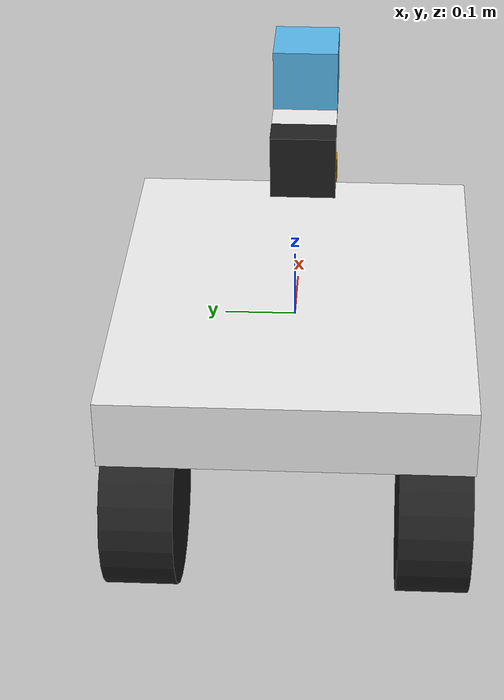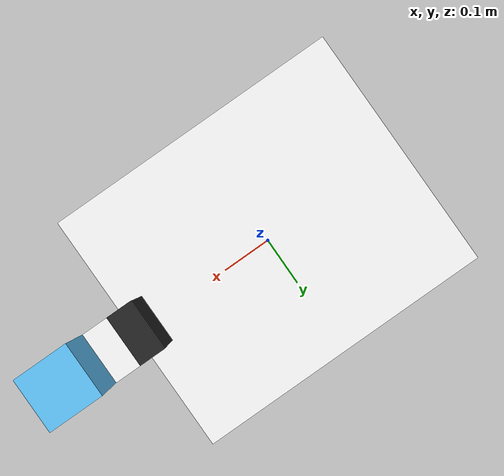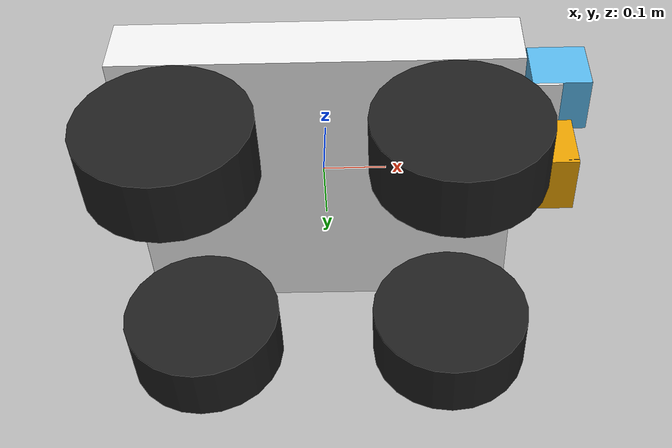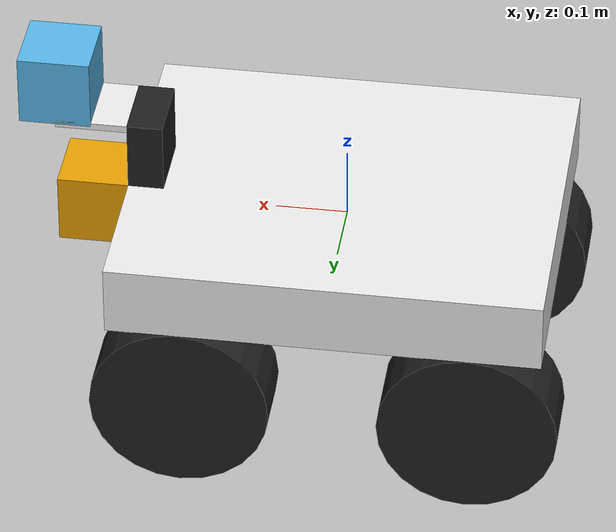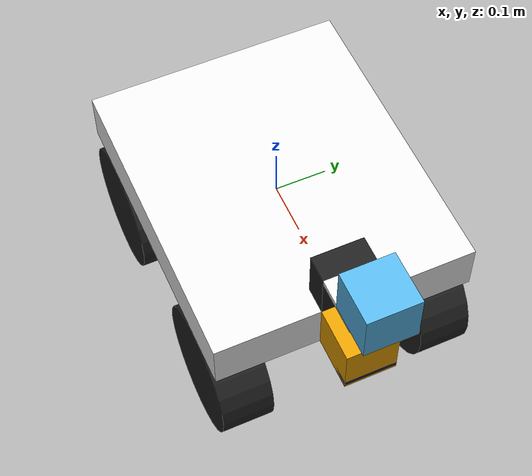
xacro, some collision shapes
<?xml version="1.0"?>
<robot name="my_bot" xmlns:xacro="http://www.ros.org/wiki/xacro">

    <xacro:property name="pi" value="3.1415926535897931"/>
    <xacro:property name="mass" value="10" />
    <xacro:property name="width" value="0.5" />
    <xacro:property name="length" value="0.6" />
    <xacro:property name="height" value="0.1" />
    <xacro:property name="radius" value="0.125" />

    <xacro:include filename="$(find my_bot)/urdf/my_bot.gazebo" />
    <xacro:include filename="$(find my_bot)/urdf/materials.xacro" />

    <link name="base_link">
        <collision>
            <geometry>
                <box size="${length} ${width} ${height}"/>
            </geometry>
        </collision>
        <visual>
            <geometry>
                <box size="${length} ${width} ${height}"/>
            </geometry>
            <material name="white"/>
        </visual>
        <inertial>
            <mass value="${mass}"/>
            <inertia ixx="1.0" ixy="0.0" ixz="0.0" iyy="1.0" iyz="0.0" izz="1.0" />
	</inertial>
    </link>

    <xacro:macro name="wheel" params="prefix suffix ref1 ref2">
        <link name="${prefix}_${suffix}_wheel">
            <visual>
                <geometry>
                    <cylinder length="${height}" radius="${radius}"/>
                </geometry>
                <material name="black"/>
                <origin rpy="${pi/2} 0 0" xyz="0 0 0"/>
            </visual>
            <collision>
                <geometry>
                    <cylinder length="${height}" radius="${radius}"/>
                </geometry>
		<origin rpy="${pi/2} 0 0" xyz="0 0 0"/>
            </collision>
            <inertial>
                <mass value="${mass/4}"/>
                <inertia ixx="1.0" ixy="0.0" ixz="0.0" iyy="1.0" iyz="0.0" izz="1.0" />
	    </inertial>
        </link>
        <joint name="${prefix}_${suffix}_wheel_joint" type="continuous">
            <axis xyz="0 1 0"/>
            <parent link="base_link"/>
            <child link="${prefix}_${suffix}_wheel"/>
            <origin rpy="0 0 0" xyz="${ref1*height*2} ${ref2*height*2} -0.175"/>
        </joint>
        <gazebo reference="${prefix}_${suffix}_wheel">
            <mu1 value="200.0"/>
            <mu2 value="100.0"/>
            <kp value="10000000.0" />
            <kd value="1.0" />
            <material>Gazebo/Black</material>
        </gazebo>
        <transmission name="${prefix}_${suffix}_wheel_trans">
            <type>transmission_interface/SimpleTransmission</type>
            <actuator name="${prefix}_${suffix}_wheel_motor">
                <hardwareInterface>hardware_interface/VelocityJointInterface</hardwareInterface>
                <mechanicalReduction>1</mechanicalReduction>
            </actuator>
            <joint name="${prefix}_${suffix}_wheel_joint">
                <hardwareInterface>hardware_interface/VelocityJointInterface</hardwareInterface>
            </joint>
        </transmission>
    </xacro:macro>
    <xacro:wheel prefix="right" suffix="front" ref1="1" ref2="1"/>
    <xacro:wheel prefix="right" suffix="back" ref1="-1" ref2="1"/>
    <xacro:wheel prefix="left" suffix="front" ref1="1" ref2="-1"/>
    <xacro:wheel prefix="left" suffix="back" ref1="-1" ref2="-1"/>

    <link name="hokuyo_link">
        <collision>
            <geometry>
                <box size="0.1 0.1 0.01"/>
            </geometry>
        </collision>
        <visual>
            <geometry>
                <box size="0.1 0.1 0.01"/>
            </geometry>
            <material name="black"/>
            <origin rpy="0 0 0" xyz="0 0 0"/>
            </visual>
        <inertial>
            <mass value="1"/>
            <inertia ixx="1.0" ixy="0.0" ixz="0.0" iyy="1.0" iyz="0.0" izz="1.0" />
        </inertial>
    </link>
    <joint name="hokuyo_joint" type="fixed">
        <parent link="base_link"/>
        <child link="hokuyo_link"/>
        <origin rpy="0 0 0" xyz="0.35 0 -0.04"/>
    </joint>

    <link name="kinect_base">
        <collision>
            <geometry>
                <box size="0.05 0.1 0.1"/>
            </geometry>
	    <origin rpy="0 0 0" xyz="0 0 0"/>
        </collision>
        <visual>
            <geometry>
                <box size="0.05 0.1 0.1"/>
            </geometry>
            <material name="black"/>
            <origin rpy="0 0 0" xyz="0 0 0"/>
        </visual>
        <inertial>
            <mass value="1"/>
            <inertia ixx="1.0" ixy="0.0" ixz="0.0" iyy="1.0" iyz="0.0" izz="1.0" />
        </inertial>
    </link>
    <joint name="kinect_base_joint" type="fixed">
        <parent link="base_link"/>
        <child link="kinect_base"/>
        <origin rpy="0 0 0" xyz="0.275 0 0.1"/>
    </joint>

    <link name="kinect_link">
        <collision>
            <geometry>
                <box size="0.1 0.1 0.01"/>
            </geometry>
	    <origin rpy="0 0 0" xyz="0 0 0"/>
        </collision>
        <visual>
            <geometry>
                <box size="0.1 0.1 0.01"/>
            </geometry>
            <material name="white"/>
            <origin rpy="0 0 0" xyz="0 0 0"/>
        </visual>
        <inertial>
            <mass value="1"/>
            <inertia ixx="1.0" ixy="0.0" ixz="0.0" iyy="1.0" iyz="0.0" izz="1.0" />
        </inertial>
    </link>
    <joint name="kinect_joint" type="fixed">
        <parent link="kinect_base"/>
        <child link="kinect_link"/>
        <origin rpy="0 0 0" xyz="0.075 0 0.045"/>
    </joint>

  <!-- Hokuyo Laser -->
  <link name="hokuyo_sensor">
    <collision>
      <origin xyz="0 0 0" rpy="0 0 0"/>
      <geometry>
	<box size="0.1 0.1 0.1"/>
      </geometry>
    </collision>
    <visual>
      <origin xyz="0 0 0" rpy="0 0 0"/>
      <geometry>
        <mesh filename="package://my_bot/meshes/hokuyo.dae"/>
      </geometry>
    </visual>
    <inertial>
      <mass value="1e-5" />
      <origin xyz="0 0 0" rpy="0 0 0"/>
      <inertia ixx="1.0" ixy="0.0" ixz="0.0" iyy="1.0" iyz="0.0" izz="1.0" />
    </inertial>
  </link>
  <joint name="hokuyo_sensor_joint" type="fixed">
    <axis xyz="0 1 0" />
    <origin xyz="0 0 0.04" rpy="0 0 0"/>
    <parent link="hokuyo_link"/>
    <child link="hokuyo_sensor"/>
  </joint>

  <link name="kinect_sensor">
    <collision>
      <origin xyz="0 0 0" rpy="0 0 0"/>
      <geometry>
	<box size="0.1 0.1 0.1"/>
      </geometry>
    </collision>
    <visual>
      <origin xyz="0 0 0" rpy="0 0 0"/>
      <geometry>
        <mesh filename="package://my_bot/meshes/kinect.dae"/>
      </geometry>
    </visual>
    <inertial>
      <mass value="1e-5" />
      <origin xyz="0 0 0" rpy="0 0 0"/>
      <inertia ixx="1.0" ixy="0.0" ixz="0.0" iyy="1.0" iyz="0.0" izz="1.0" />
    </inertial>
  </link>
  <joint name="kinect_sensor_joint" type="fixed">
    <origin xyz="0.05 0 0.05" rpy="0 0 0"/>
    <parent link="kinect_link"/>
    <child link="kinect_sensor"/>
  </joint>

</robot>
